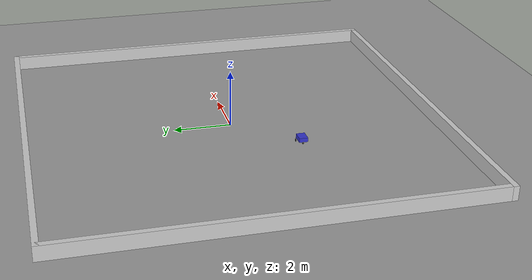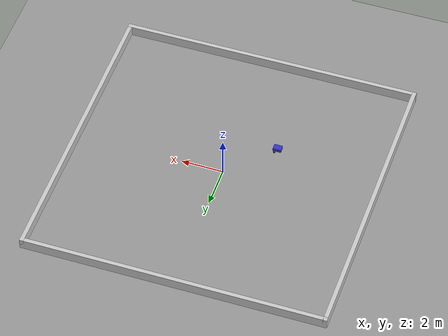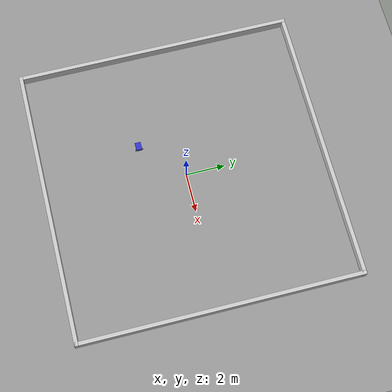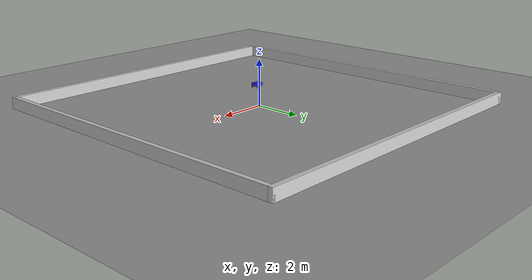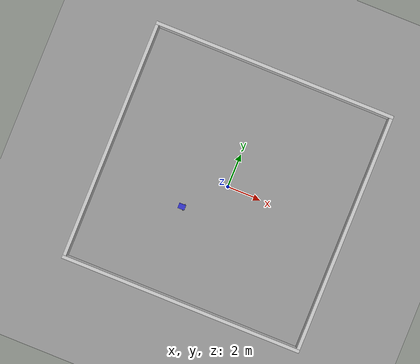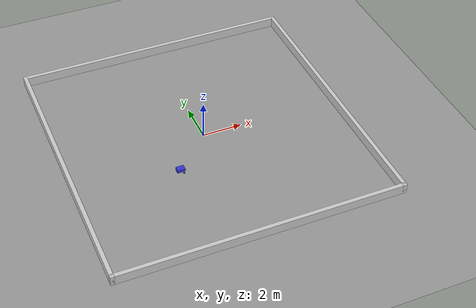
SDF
<?xml version="1.0"?>
<sdf version="1.6">
  <world name="patrol_world">

    <physics name="1ms" type="ignored">
      <max_step_size>0.001</max_step_size>
      <real_time_factor>1.0</real_time_factor>
    </physics>

    <plugin filename="ignition-gazebo-physics-system"
            name="gz::sim::systems::Physics"/>
    <plugin filename="ignition-gazebo-user-commands-system"
            name="gz::sim::systems::UserCommands"/>
    <plugin filename="ignition-gazebo-scene-broadcaster-system"
            name="gz::sim::systems::SceneBroadcaster"/>
    <plugin filename="ignition-gazebo-sensors-system"
            name="gz::sim::systems::Sensors">
      <render_engine>ogre2</render_engine>
    </plugin>

    <light type="directional" name="sun">
      <cast_shadows>true</cast_shadows>
      <pose>0 0 10 0 0 0</pose>
      <diffuse>1 1 1 1</diffuse>
      <specular>0.5 0.5 0.5 1</specular>
      <attenuation>
        <range>1000</range>
        <constant>0.9</constant>
        <linear>0.01</linear>
        <quadratic>0.001</quadratic>
      </attenuation>
      <direction>-0.5 0.1 -0.9</direction>
    </light>

    <model name="ground_plane">
      <static>true</static>
      <link name="link">
        <collision name="collision">
          <geometry><plane><normal>0 0 1</normal><size>100 100</size></plane></geometry>
        </collision>
        <visual name="visual">
          <geometry><plane><normal>0 0 1</normal><size>100 100</size></plane></geometry>
          <material>
            <ambient>0.6 0.6 0.6 1</ambient>
            <diffuse>0.6 0.6 0.6 1</diffuse>
            <specular>0.6 0.6 0.6 1</specular>
          </material>
        </visual>
      </link>
    </model>

    <!-- 墙壁 -->
    <model name="wall_north"><static>true</static><pose>0 7.1 0.25 0 0 0</pose>
      <link name="link">
        <collision name="collision"><geometry><box><size>14.4 0.2 0.5</size></box></geometry></collision>
        <visual name="visual"><geometry><box><size>14.4 0.2 0.5</size></box></geometry>
          <material><ambient>0.8 0.8 0.8 1</ambient></material></visual>
      </link></model>

    <model name="wall_south"><static>true</static><pose>0 -7.1 0.25 0 0 0</pose>
      <link name="link">
        <collision name="collision"><geometry><box><size>14.4 0.2 0.5</size></box></geometry></collision>
        <visual name="visual"><geometry><box><size>14.4 0.2 0.5</size></box></geometry>
          <material><ambient>0.8 0.8 0.8 1</ambient></material></visual>
      </link></model>

    <model name="wall_east"><static>true</static><pose>7.1 0 0.25 0 0 1.5708</pose>
      <link name="link">
        <collision name="collision"><geometry><box><size>14.4 0.2 0.5</size></box></geometry></collision>
        <visual name="visual"><geometry><box><size>14.4 0.2 0.5</size></box></geometry>
          <material><ambient>0.8 0.8 0.8 1</ambient></material></visual>
      </link></model>

    <model name="wall_west"><static>true</static><pose>-7.1 0 0.25 0 0 1.5708</pose>
      <link name="link">
        <collision name="collision"><geometry><box><size>14.4 0.2 0.5</size></box></geometry></collision>
        <visual name="visual"><geometry><box><size>14.4 0.2 0.5</size></box></geometry>
          <material><ambient>0.8 0.8 0.8 1</ambient></material></visual>
      </link></model>

    <!--
      ====== PatrolBot 机器人 ======
      SDF 模型用于 Gazebo 仿真 (base_link 为根，与原 chassis 等效)
      URDF 模型用于 ROS2 TF (base_footprint->base_link->... 树)
      两者 link/joint 名称完全一致
    -->
    <model name="patrol_bot">
      <pose>-2.0 -2.0 0.12 0 0 0</pose>

      <link name="base_link">
        <pose>0 0 0.1 0 0 0</pose>
        <inertial>
          <mass>5.0</mass>
          <inertia><ixx>0.1</ixx><ixy>0</ixy><ixz>0</ixz><iyy>0.1</iyy><iyz>0</iyz><izz>0.1</izz></inertia>
        </inertial>
        <visual name="chassis_visual">
          <geometry><box><size>0.4 0.3 0.15</size></box></geometry>
          <material><ambient>0.2 0.2 0.8 1</ambient><diffuse>0.2 0.2 0.8 1</diffuse></material>
        </visual>
        <collision name="chassis_collision">
          <geometry><box><size>0.4 0.3 0.15</size></box></geometry>
        </collision>
      </link>

      <link name="left_wheel">
        <pose>0.12 0.18 -0.02 1.5708 0 0</pose>
        <inertial>
          <mass>0.5</mass>
          <inertia><ixx>0.001</ixx><iyy>0.001</iyy><izz>0.001</izz></inertia>
        </inertial>
        <visual name="left_wheel_visual">
          <geometry><cylinder><radius>0.05</radius><length>0.02</length></cylinder></geometry>
          <material><ambient>0.2 0.2 0.2 1</ambient></material>
        </visual>
        <collision name="left_wheel_collision">
          <geometry><cylinder><radius>0.05</radius><length>0.02</length></cylinder></geometry>
        </collision>
      </link>

      <link name="right_wheel">
        <pose>0.12 -0.18 -0.02 1.5708 0 0</pose>
        <inertial>
          <mass>0.5</mass>
          <inertia><ixx>0.001</ixx><iyy>0.001</iyy><izz>0.001</izz></inertia>
        </inertial>
        <visual name="right_wheel_visual">
          <geometry><cylinder><radius>0.05</radius><length>0.02</length></cylinder></geometry>
          <material><ambient>0.2 0.2 0.2 1</ambient></material>
        </visual>
        <collision name="right_wheel_collision">
          <geometry><cylinder><radius>0.05</radius><length>0.02</length></cylinder></geometry>
        </collision>
      </link>

      <link name="caster">
        <pose>-0.15 0 -0.04 0 0 0</pose>
        <inertial>
          <mass>0.1</mass>
          <inertia><ixx>0.0001</ixx><iyy>0.0001</iyy><izz>0.0001</izz></inertia>
        </inertial>
        <visual name="caster_visual">
          <geometry><sphere><radius>0.03</radius></sphere></geometry>
          <material><ambient>0.2 0.2 0.2 1</ambient></material>
        </visual>
        <collision name="caster_collision">
          <geometry><sphere><radius>0.03</radius></sphere></geometry>
        </collision>
      </link>

      <link name="lidar_link">
        <pose>0.1 0 0.2 0 0 0</pose>
        <sensor name="lidar" type="gpu_lidar">
          <topic>scan</topic>
          <update_rate>10</update_rate>
          <lidar>
            <scan>
              <horizontal>
                <samples>360</samples>
                <resolution>1</resolution>
                <min_angle>-3.14159</min_angle>
                <max_angle>3.14159</max_angle>
              </horizontal>
            </scan>
            <range>
              <min>0.1</min>
              <max>12.0</max>
              <resolution>0.02</resolution>
            </range>
          </lidar>
          <always_on>1</always_on>
          <visualize>true</visualize>
        </sensor>
      </link>

      <link name="camera_link">
        <pose>0.18 0 0.22 0 0 0</pose>
        <sensor name="camera" type="camera">
          <topic>camera/image_raw</topic>
          <update_rate>10</update_rate>
          <camera>
            <horizontal_fov>1.047</horizontal_fov>
            <image><width>640</width><height>480</height></image>
            <clip><near>0.1</near><far>100</far></clip>
          </camera>
          <always_on>1</always_on>
          <visualize>true</visualize>
        </sensor>
      </link>

      <!-- Joints -->
      <joint name="left_wheel_joint" type="revolute">
        <parent>base_link</parent><child>left_wheel</child>
        <axis><xyz>0 0 -1</xyz></axis>
      </joint>
      <joint name="right_wheel_joint" type="revolute">
        <parent>base_link</parent><child>right_wheel</child>
        <axis><xyz>0 0 -1</xyz></axis>
      </joint>
      <joint name="caster_joint" type="fixed">
        <parent>base_link</parent><child>caster</child>
      </joint>
      <joint name="lidar_joint" type="fixed">
        <parent>base_link</parent><child>lidar_link</child>
      </joint>
      <joint name="camera_joint" type="fixed">
        <parent>base_link</parent><child>camera_link</child>
      </joint>

      <!-- DiffDrive 插件 -->
      <plugin filename="ignition-gazebo-diff-drive-system"
              name="gz::sim::systems::DiffDrive">
        <left_joint>left_wheel_joint</left_joint>
        <right_joint>right_wheel_joint</right_joint>
        <wheel_separation>0.36</wheel_separation>
        <wheel_radius>0.05</wheel_radius>
        <odom_publish_frequency>30</odom_publish_frequency>
        <topic>cmd_vel</topic>
        <odom_topic>odometry</odom_topic>
        <tf_topic>/model/patrol_bot/tf</tf_topic>
        <max_linear_velocity>0.5</max_linear_velocity>
        <min_linear_velocity>-0.5</min_linear_velocity>
        <max_angular_velocity>1.5</max_angular_velocity>
        <min_angular_velocity>-1.5</min_angular_velocity>
      </plugin>

    </model>

  </world>
</sdf>
